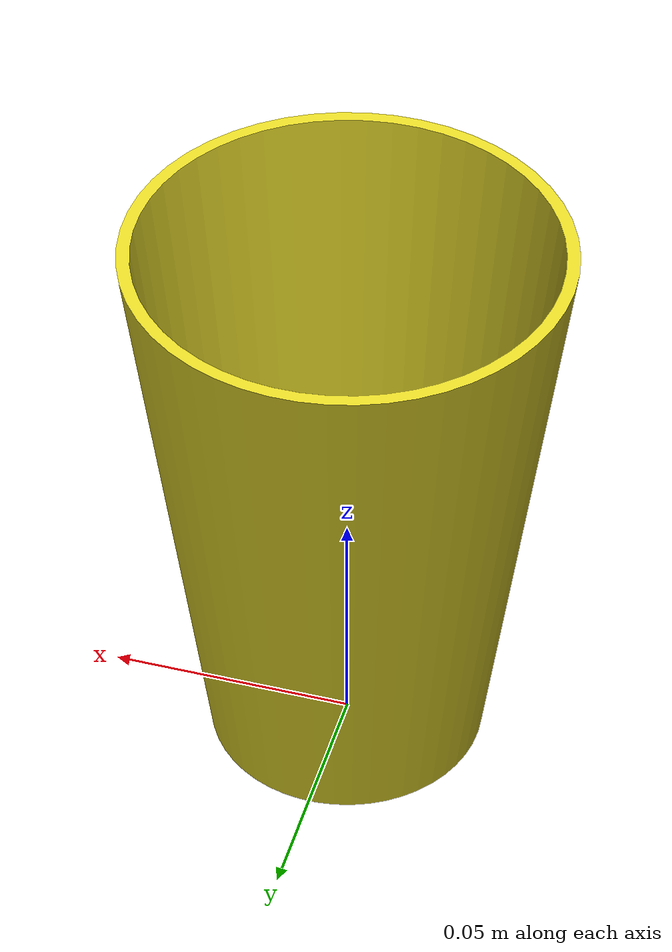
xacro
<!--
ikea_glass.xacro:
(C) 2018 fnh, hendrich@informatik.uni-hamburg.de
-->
<?xml version="1.0" ?>
<robot xmlns:sensor="http://playerstage.sourceforge.net/gazebo/xmlschema/#sensor"
       xmlns:controller="http://playerstage.sourceforge.net/gazebo/xmlschema/#controller"
       xmlns:interface="http://playerstage.sourceforge.net/gazebo/xmlschema/#interface"
       xmlns:xacro="http://www.ros.org/wiki/xacro"
       name="yellow_glass">

   <xacro:include filename="$(find tiago_barkeeper_world)/urdf/materials.xacro" />
   <xacro:include filename="$(find tiago_barkeeper_world)/urdf/ikea_glass.xacro" />

   <xacro:ikea_glass
          namespace="" name="yellow_glass" liquid_weight="0.1"
          rvizMaterial="yellow" gazeboMaterial="Gazebo/Yellow" />

</robot>

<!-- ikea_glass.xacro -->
<robot xmlns:sensor="http://playerstage.sourceforge.net/gazebo/xmlschema/#sensor"
       xmlns:controller="http://playerstage.sourceforge.net/gazebo/xmlschema/#controller"
       xmlns:interface="http://playerstage.sourceforge.net/gazebo/xmlschema/#interface"
       xmlns:xacro="http://www.ros.org/wiki/xacro"
       name="ikea_glass">

  <xacro:macro name="ikea_glass"
               params="namespace name liquid_weight rvizMaterial gazeboMaterial" >

    <!-- glass main body, mesh used for both collision and visual -->
    <link name="${namespace}${name}">
      <inertial>
        <!-- center of mass is centered in x and y, and in z is approximated
             by one third of the glass height multiplied by amount of liquid
             in the glass ... -->
        <mass value="${0.2+liquid_weight}" />
        <origin xyz="0 0 ${0.3*0.12*(liquid_weight/0.2)}" rpy="0 0 0" />
        <inertia ixx="0.01" ixy="0" ixz="0" iyy="0.01" iyz="0" izz="0.01" />
      </inertial>
      <collision>
        <!-- standard IKEA drinking glass, 120mm, upper diam 86, bottom diam 56 -->
        <origin xyz="0 0 0" rpy="0 0 0" />
        <geometry>
          <mesh filename="file://$(find tiago_barkeeper_world)/meshes/ikea_glass_binary.stl" scale="0.001 0.001 0.001" />
        </geometry>
      </collision>
      <visual>
        <origin xyz="0 0 0" rpy="0 0 0" />
        <geometry>
          <mesh filename="file://$(find tiago_barkeeper_world)/meshes/ikea_glass_binary.stl" scale="0.001 0.001 0.001" />
        </geometry>
        <material name="${rvizMaterial}" >
        </material>
      </visual>
    </link>
    <gazebo reference="${namespace}${name}">
      <!-- material/texture definition for Gazebo -->
      <material>${gazeboMaterial}</material> -->
      <turnGravityOff>false</turnGravityOff>
      <selfCollide>false</selfCollide>
      <mu1>0</mu1>
      <mu2>0</mu2>
      <kp>1000000.0</kp>
      <kd>1.0</kd>
    </gazebo>

    <link name="${namespace}${name}_opening" />

    <joint name="${namespace}${name}_opening_joint" type="fixed">
      <parent link="${namespace}${name}" />
      <child link="${namespace}${name}_opening" />
      <origin xyz="0 0 0.12" rpy="0 0 0" />
    </joint>

  </xacro:macro>

</robot>
